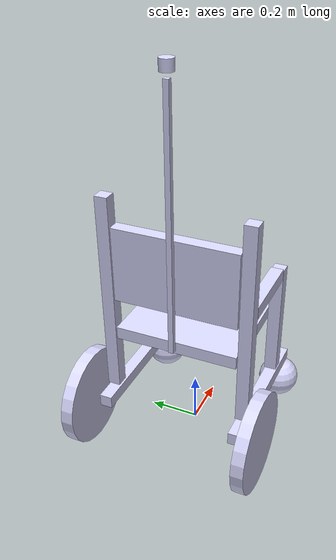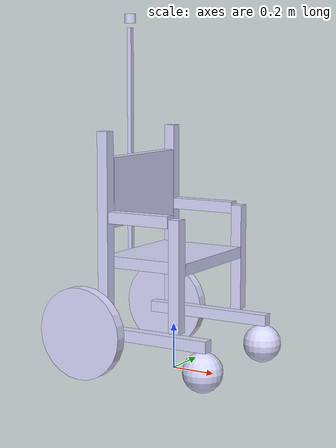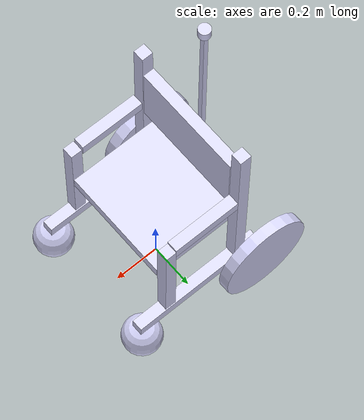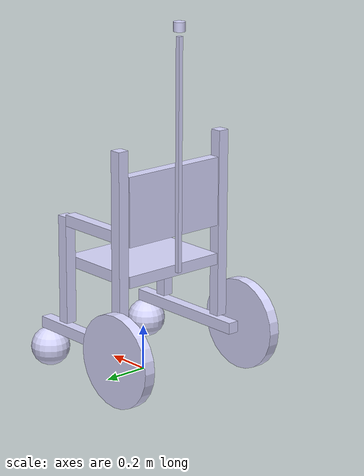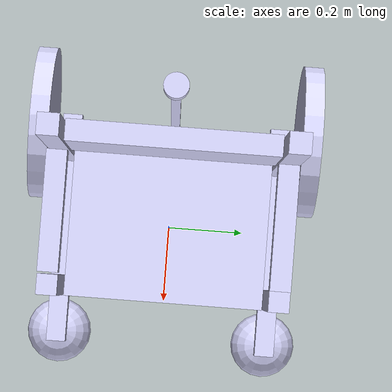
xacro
<?xml version="1.0"?>
<robot xmlns:xacro="http://www.ros.org/wiki/xacro"  name="cadeira">

    <xacro:include filename="cadeira.urdf" />

    <xacro:include filename="gazebo_control.xacro" />

    <xacro:include filename="inertial_macros.xacro" />

    <xacro:include filename="colors.xacro" />

</robot>

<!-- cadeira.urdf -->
<robot name="Assento">

    <link name="base_link" >

    </link>

    <joint name="base_footprint_joint" type="fixed">
        <parent link="base_link"/>
        <child link="base_footprint"/>
        <origin xyz="0 0 0" rpy="0 0 0"/>
    </joint>

    <link name="base_footprint">
    </link>

    <joint name="robot_base_joint" type="fixed">
        <parent link="base_link"/>
        <child link="robot_base"/>
        <origin xyz="0 0 0" rpy="0 0 0"/>
    </joint>

    <link name="robot_base">
        <inertial>
            <origin xyz="0.000000 0.000000 0.500000" rpy="-3.141593 3.141593 -3.141593" />
            <inertia ixz="0.0" ixy="0.0" ixx="0.21041666666667" iyz="0.0" izz="0.34166666666667" iyy="0.13541666666667" />
            <mass value="10.0" />
        </inertial>
        <collision name="Assento">
            <origin xyz="0.000000 0.000000 0.500000" rpy="-3.141593 3.141593 -3.141593" />
            <geometry>
                <box size="0.400000 0.490000 0.050000" />
            </geometry>
        </collision>
        <visual name="Assento">
            <origin xyz="0.000000 0.000000 0.500000" rpy="-3.141593 3.141593 -3.141593" />
            <geometry>
                <box size="0.400000 0.490000 0.050000" />
            </geometry>
            <material name="robot_base_material">
                <color rgba="0.850000 0.850000 1.000000 1.0" />
            </material>
        </visual>
    </link>
    <joint type="fixed" name="ColunaEsquerdaTraseiraLink">
        <axis xyz="0 0 1" />
        <parent link="robot_base" />
        <child link="ColunaEsquerdaTraseira" />
        <origin xyz="-0.175000 0.275000 0.500000" rpy="-1.570796 3.141593 -3.141593" />
    </joint>
    <link name="ColunaEsquerdaTraseira">
        <inertial>
            <origin xyz="0.000000 0.150000 -0.000000" rpy="1.570796 3.141593 -3.141593" />
            <inertia ixz="0.0" ixy="0.0" ixx="0.12838541666667" iyz="0.0" izz="0.00088541666666667" iyy="0.12838541666667" />
            <mass value="2.125" />
        </inertial>
        <collision name="ColunaEsquerdaTraseira">
            <origin xyz="0.000000 0.150000 -0.000000" rpy="1.570796 3.141593 -3.141593" />
            <geometry>
                <box size="0.050000 0.050000 0.825000" />
            </geometry>
        </collision>
        <visual name="ColunaEsquerdaTraseira">
            <origin xyz="0.000000 0.150000 -0.000000" rpy="1.570796 3.141593 -3.141593" />
            <geometry>
                <box size="0.050000 0.050000 0.825000" />
            </geometry>
            <material name="ColunaEsquerdaTraseira_material">
                <color rgba="0.850000 0.850000 1.000000 1.0" />
            </material>
        </visual>
    </link>
    <joint type="fixed" name="BaseEsquerdaLink">
        <axis xyz="0 0 1" />
        <parent link="ColunaEsquerdaTraseira" />
        <child link="BaseEsquerda" />
        <origin xyz="0.000000 -0.300000 0.000000" rpy="1.570796 3.141593 -3.141593" />
    </joint>
    <link name="BaseEsquerda">
        <inertial>
            <origin xyz="0.200000 0.000000 0.000000" rpy="-3.141593 3.141593 -3.141593" />
            <inertia ixz="0.0" ixy="0.0" ixx="0.00052083333333333" iyz="0.0" izz="0.026302083333333" iyy="0.026302083333333" />
            <mass value="1.25" />
        </inertial>
        <collision name="BaseEsquerda">
            <origin xyz="0.200000 0.000000 0.000000" rpy="-3.141593 3.141593 -3.141593" />
            <geometry>
                <box size="0.600000 0.050000 0.050000" />
            </geometry>
        </collision>
        <visual name="BaseEsquerda">
            <origin xyz="0.200000 0.000000 0.000000" rpy="-3.141593 3.141593 -3.141593" />
            <geometry>
                <box size="0.600000 0.050000 0.050000" />
            </geometry>
            <material name="BaseEsquerda_material">
                <color rgba="0.850000 0.850000 1.000000 1.0" />
            </material>
        </visual>
    </link>
    <joint type="continuous" name="MotorEsquerdo">
        <axis xyz="0 0 -1" />
        <parent link="BaseEsquerda" />
        <child link="RodaEsquerdaTraseira" />
        <origin xyz="-0.075000 0.075000 0.000000" rpy="-1.570796 3.141593 -3.141593" />
    </joint>
    <link name="RodaEsquerdaTraseira">
        <inertial>
            <origin xyz="0.000000 0.000000 0.000000" rpy="-3.141593 3.141593 -3.141593" />
            <inertia ixz="0.0" ixy="0.0" ixx="0.020616701789184" iyz="0.0" izz="0.039760782021998" iyy="0.020616701789184" />
            <mass value="3.5342917352887" />
        </inertial>
        <collision name="RodaEsquerdaTraseira">
            <origin xyz="0.000000 0.000000 0.000000" rpy="-3.141593 3.141593 -3.141593" />
            <geometry>
                <cylinder length="0.05" radius="0.2" />
            </geometry>
        </collision>
        <visual name="RodaEsquerdaTraseira">
            <origin xyz="0.000000 0.000000 0.000000" rpy="-3.141593 3.141593 -3.141593" />
            <geometry>
                <cylinder length="0.05" radius="0.2" />
            </geometry>
            <material name="RodaEsquerdaTraseira_material">
                <color rgba="0.850000 0.850000 1.000000 1.0" />
            </material>
        </visual>
    </link>
    <joint type="fixed" name="RodaEsquerdaDianteiraLink">
        <axis xyz="0 0 1" />
        <parent link="BaseEsquerda" />
        <child link="RodaEsquerdaDianteira" />
        <origin xyz="0.475000 0.000000 -0.110000" rpy="-3.141593 3.141593 -3.141593" />
    </joint>
    <link name="RodaEsquerdaDianteira">
        <inertial>
            <origin xyz="0.000000 0.000000 0.000000" rpy="-3.141593 3.141593 -3.141593" />
            <inertia ixz="0.0" ixy="0.0" ixx="0.016755160819147" iyz="0.0" izz="0.016755160819147" iyy="0.016755160819147" />
            <mass value="4.1887902047867" />
        </inertial>
        <collision name="RodaEsquerdaDianteira">
            <origin xyz="0.000000 0.000000 0.000000" rpy="-3.141593 3.141593 -3.141593" />
            <geometry>
                <sphere radius="0.085" />
            </geometry>
        </collision>
        <visual name="RodaEsquerdaDianteira">
            <origin xyz="0.000000 0.000000 0.000000" rpy="-3.141593 3.141593 -3.141593" />
            <geometry>
                <sphere radius="0.085" />
            </geometry>
            <material name="RodaEsquerdaDianteira_material">
                <color rgba="0.850000 0.850000 1.000000 1.0" />
            </material>
        </visual>
    </link>

    <gazebo reference="RodaEsquerdaDianteira">
        <material>Gazebo/White</material>
        <mu1 value="0.04"/>
        <mu2 value="0.04"/>
    </gazebo>

    <joint type="fixed" name="ColunaEsquerdaDianteiraLink">
        <axis xyz="0 0 1" />
        <parent link="BaseEsquerda" />
        <child link="ColunaEsquerdaDianteira" />
        <origin xyz="0.350000 0.000000 0.000000" rpy="-3.141593 3.141593 -3.141593" />
    </joint>
    <link name="ColunaEsquerdaDianteira">
        <inertial>
            <origin xyz="0.000000 0.000000 0.275000" rpy="-3.141593 3.141593 -3.141593" />
            <inertia ixz="0.0" ixy="0.0" ixx="0.00578125" iyz="0.0" izz="0.0003125" iyy="0.00578125" />
            <mass value="0.75" />
        </inertial>
        <collision name="ColunaEsquerdaDianteira">
            <origin xyz="0.000000 0.000000 0.275000" rpy="-3.141593 3.141593 -3.141593" />
            <geometry>
                <box size="0.050000 0.050000 0.475000" />
            </geometry>
        </collision>
        <visual name="ColunaEsquerdaDianteira">
            <origin xyz="0.000000 0.000000 0.275000" rpy="-3.141593 3.141593 -3.141593" />
            <geometry>
                <box size="0.050000 0.050000 0.475000" />
            </geometry>
            <material name="ColunaEsquerdaDianteira_material">
                <color rgba="0.850000 0.850000 1.000000 1.0" />
            </material>
        </visual>
    </link>
    <joint type="fixed" name="ColunaDireitaTraseiraLink">
        <axis xyz="0 0 1" />
        <parent link="robot_base" />
        <child link="ColunaDireitaTraseira" />
        <origin xyz="-0.175000 -0.275000 0.500000" rpy="-1.570796 3.141593 -3.141593" />
    </joint>
    <link name="ColunaDireitaTraseira">
        <inertial>
            <origin xyz="0.000000 0.150000 -0.000000" rpy="1.570796 3.141593 -3.141593" />
            <inertia ixz="0.0" ixy="0.0" ixx="0.12838541666667" iyz="0.0" izz="0.00088541666666667" iyy="0.12838541666667" />
            <mass value="2.125" />
        </inertial>
        <collision name="ColunaDireitaTraseira">
            <origin xyz="0.000000 0.150000 -0.000000" rpy="1.570796 3.141593 -3.141593" />
            <geometry>
                <box size="0.050000 0.050000 0.825000" />
            </geometry>
        </collision>
        <visual name="ColunaDireitaTraseira">
            <origin xyz="0.000000 0.150000 -0.000000" rpy="1.570796 3.141593 -3.141593" />
            <geometry>
                <box size="0.050000 0.050000 0.825000" />
            </geometry>
            <material name="ColunaDireitaTraseira_material">
                <color rgba="0.850000 0.850000 1.000000 1.0" />
            </material>
        </visual>
    </link>
    <joint type="fixed" name="BaseDireitaLink">
        <axis xyz="0 0 1" />
        <parent link="ColunaDireitaTraseira" />
        <child link="BaseDireita" />
        <origin xyz="0.000000 -0.300000 0.000000" rpy="1.570796 3.141593 -3.141593" />
    </joint>
    <link name="BaseDireita">
        <inertial>
            <origin xyz="0.200000 0.000000 0.000000" rpy="-3.141593 3.141593 -3.141593" />
            <inertia ixz="0.0" ixy="0.0" ixx="0.00052083333333333" iyz="0.0" izz="0.026302083333333" iyy="0.026302083333333" />
            <mass value="1.25" />
        </inertial>
        <collision name="BaseDireita">
            <origin xyz="0.200000 0.000000 0.000000" rpy="-3.141593 3.141593 -3.141593" />
            <geometry>
                <box size="0.600000 0.050000 0.050000" />
            </geometry>
        </collision>
        <visual name="BaseDireita">
            <origin xyz="0.200000 0.000000 0.000000" rpy="-3.141593 3.141593 -3.141593" />
            <geometry>
                <box size="0.600000 0.050000 0.050000" />
            </geometry>
            <material name="BaseDireita_material">
                <color rgba="0.850000 0.850000 1.000000 1.0" />
            </material>
        </visual>
    </link>
    <joint type="continuous" name="MotorDireito">
        <axis xyz="0 0 -1" />
        <parent link="BaseDireita" />
        <child link="RodaDireitaTraseira" />
        <origin xyz="-0.075000 -0.075000 0.000000" rpy="-1.570796 3.141593 -3.141593" />
    </joint>
    <link name="RodaDireitaTraseira">
        <inertial>
            <origin xyz="0.000000 0.000000 0.000000" rpy="-3.141593 3.141593 -3.141593" />
            <inertia ixz="0.0" ixy="0.0" ixx="0.020616701789184" iyz="0.0" izz="0.039760782021998" iyy="0.020616701789184" />
            <mass value="3.5342917352887" />
        </inertial>
        <collision name="RodaDireitaTraseira">
            <origin xyz="0.000000 0.000000 0.000000" rpy="-3.141593 3.141593 -3.141593" />
            <geometry>
                <cylinder length="0.05" radius="0.2" />
            </geometry>
        </collision>
        <visual name="RodaDireitaTraseira">
            <origin xyz="0.000000 0.000000 0.000000" rpy="-3.141593 3.141593 -3.141593" />
            <geometry>
                <cylinder length="0.05" radius="0.2" />
            </geometry>
            <material name="RodaDireitaTraseira_material">
                <color rgba="0.850000 0.850000 1.000000 1.0" />
            </material>
        </visual>
    </link>
    <joint type="fixed" name="ColunaDireitaDianteira">
        <axis xyz="0 0 1" />
        <parent link="BaseDireita" />
        <child link="ColunaDireitaDianteira_2" />
        <origin xyz="0.350000 0.000000 0.000000" rpy="-3.141593 3.141593 -3.141593" />
    </joint>
    <link name="ColunaDireitaDianteira_2">
        <inertial>
            <origin xyz="0.000000 0.000000 0.275000" rpy="-3.141593 3.141593 -3.141593" />
            <inertia ixz="0.0" ixy="0.0" ixx="0.00578125" iyz="0.0" izz="0.0003125" iyy="0.00578125" />
            <mass value="0.75" />
        </inertial>
        <collision name="ColunaDireitaDianteira">
            <origin xyz="0.000000 0.000000 0.275000" rpy="-3.141593 3.141593 -3.141593" />
            <geometry>
                <box size="0.050000 0.050000 0.475000" />
            </geometry>
        </collision>
        <visual name="ColunaDireitaDianteira">
            <origin xyz="0.000000 0.000000 0.275000" rpy="-3.141593 3.141593 -3.141593" />
            <geometry>
                <box size="0.050000 0.050000 0.475000" />
            </geometry>
            <material name="ColunaDireitaDianteira_2_material">
                <color rgba="0.850000 0.850000 1.000000 1.0" />
            </material>
        </visual>
    </link>
    <joint type="fixed" name="RodaDireitaDianteiraLink">
        <axis xyz="0 0 1" />
        <parent link="BaseDireita" />
        <child link="RodaDireitaDianteira" />
        <origin xyz="0.475000 0.000000 -0.110000" rpy="-3.141593 3.141593 -3.141593" />
    </joint>
    <link name="RodaDireitaDianteira">
        <inertial>
            <origin xyz="0.000000 0.000000 0.000000" rpy="-3.141593 3.141593 -3.141593" />
            <inertia ixz="0.0" ixy="0.0" ixx="0.016755160819147" iyz="0.0" izz="0.016755160819147" iyy="0.016755160819147" />
            <mass value="4.1887902047867" />
        </inertial>
        <collision name="RodaDireitaDianteira">
            <origin xyz="0.000000 0.000000 0.000000" rpy="-3.141593 3.141593 -3.141593" />
            <geometry>
                <sphere radius="0.085" />
            </geometry>
        </collision>
        <visual name="RodaDireitaDianteira">
            <origin xyz="0.000000 0.000000 0.000000" rpy="-3.141593 3.141593 -3.141593" />
            <geometry>
                <sphere radius="0.085" />
            </geometry>
            <material name="RodaDireitaDianteira_material">
                <color rgba="0.850000 0.850000 1.000000 1.0" />
            </material>
        </visual>
    </link>

    <gazebo reference="RodaDireitaDianteira">
        <material>Gazebo/White</material>
        <mu1 value="0.04"/>
        <mu2 value="0.04"/>
    </gazebo>

    <joint type="fixed" name="ApoioCostasLink">
        <axis xyz="0 0 1" />
        <parent link="robot_base" />
        <child link="ApoioCostas" />
        <origin xyz="-0.175000 0.000000 0.800000" rpy="-3.141593 3.141593 -3.141593" />
    </joint>
    <link name="ApoioCostas">
        <inertial>
            <origin xyz="0.000000 0.000000 0.000000" rpy="-3.141593 3.141593 -3.141593" />
            <inertia ixz="0.0" ixy="0.0" ixx="0.2125" iyz="0.0" izz="0.1578125" iyy="0.0578125" />
            <mass value="7.5" />
        </inertial>
        <collision name="ApoioCostas">
            <origin xyz="0.000000 0.000000 0.000000" rpy="-3.141593 3.141593 -3.141593" />
            <geometry>
                <box size="0.050000 0.490000 0.300000" />
            </geometry>
        </collision>
        <visual name="ApoioCostas">
            <origin xyz="0.000000 0.000000 0.000000" rpy="-3.141593 3.141593 -3.141593" />
            <geometry>
                <box size="0.050000 0.490000 0.300000" />
            </geometry>
            <material name="ApoioCostas_material">
                <color rgba="0.850000 0.850000 1.000000 1.0" />
            </material>
        </visual>
    </link>
    <joint type="fixed" name="ApoioBracoEsquerdoLink">
        <axis xyz="0 0 1" />
        <parent link="robot_base" />
        <child link="ApoioBracoEsquerdo" />
        <origin xyz="0.000000 0.275000 0.700000" rpy="-3.141593 3.141593 -3.141593" />
    </joint>
    <link name="ApoioBracoEsquerdo">
        <inertial>
            <origin xyz="0.000000 0.000000 0.000000" rpy="-3.141593 3.141593 -3.141593" />
            <inertia ixz="0.0" ixy="0.0" ixx="0.00036458333333333" iyz="0.0" izz="0.0091145833333333" iyy="0.0091145833333333" />
            <mass value="0.875" />
        </inertial>
        <collision name="ApoioBracoEsquerdo">
            <origin xyz="0.000000 0.000000 0.000000" rpy="-3.141593 3.141593 -3.141593" />
            <geometry>
                <box size="0.300000 0.050000 0.050000" />
            </geometry>
        </collision>
        <visual name="ApoioBracoEsquerdo">
            <origin xyz="0.000000 0.000000 0.000000" rpy="-3.141593 3.141593 -3.141593" />
            <geometry>
                <box size="0.300000 0.050000 0.050000" />
            </geometry>
            <material name="ApoioBracoEsquerdo_material">
                <color rgba="0.850000 0.850000 1.000000 1.0" />
            </material>
        </visual>
    </link>
    <joint type="fixed" name="ApoioBracoDireitoLink">
        <axis xyz="0 0 1" />
        <parent link="robot_base" />
        <child link="ApoioBracoDireito" />
        <origin xyz="0.000000 -0.275000 0.700000" rpy="-3.141593 3.141593 -3.141593" />
    </joint>
    <link name="ApoioBracoDireito">
        <inertial>
            <origin xyz="0.000000 0.000000 0.000000" rpy="-3.141593 3.141593 -3.141593" />
            <inertia ixz="0.0" ixy="0.0" ixx="0.00036458333333333" iyz="0.0" izz="0.0091145833333333" iyy="0.0091145833333333" />
            <mass value="0.875" />
        </inertial>
        <collision name="ApoioBracoDireito">
            <origin xyz="0.000000 0.000000 0.000000" rpy="-3.141593 3.141593 -3.141593" />
            <geometry>
                <box size="0.290000 0.050000 0.050000" />
            </geometry>
        </collision>
        <visual name="ApoioBracoDireito">
            <origin xyz="0.000000 0.000000 0.000000" rpy="-3.141593 3.141593 -3.141593" />
            <geometry>
                <box size="0.290000 0.050000 0.050000" />
            </geometry>
            <material name="ApoioBracoDireito_material">
                <color rgba="0.850000 0.850000 1.000000 1.0" />
            </material>
        </visual>
    </link>
    <joint type="fixed" name="ApoioLidarLink">
        <axis xyz="0 0 1" />
        <parent link="robot_base" />
        <child link="ApoioLidar" />
        <origin xyz="-0.225000 0.000000 0.500000" rpy="-3.141593 3.141593 -3.141593" />
    </joint>
    <link name="ApoioLidar">
        <inertial>
            <origin xyz="0.000000 0.000000 0.500000" rpy="-3.141593 3.141593 -3.141593" />
            <inertia ixz="0.0" ixy="0.0" ixx="0.20885416666667" iyz="0.0" izz="0.0010416666666667" iyy="0.20885416666667" />
            <mass value="2.5" />
        </inertial>
        <collision name="ApoioLidar">
            <origin xyz="0.000000 0.000000 0.500000" rpy="-3.141593 3.141593 -3.141593" />
            <geometry>
                <box size="0.020000 0.020000 1.000000" />
            </geometry>
        </collision>
        <visual name="ApoioLidar">
            <origin xyz="0.000000 0.000000 0.500000" rpy="0 0 0" />
            <geometry>
                <box size="0.020000 0.020000 1.000000" />
            </geometry>
            <material name="ApoioLidar_material">
                <color rgba="0.850000 0.850000 1.000000 1.0" />
            </material>
        </visual>
    </link>
    <joint type="revolute" name="MotorLidar">
        <axis xyz="0 1 0" />
        <parent link="ApoioLidar" />
        <child link="laser_frame" />
        <origin xyz="0.000000 -0.0000 1.040000" rpy="0 0 0" />
        <limit lower="-2" upper="1.2" effort="1000" velocity="1000" />
    </joint>
    <link name="laser_frame">
        <inertial>
            <origin xyz="0.000000 0.0000 -0.000000" rpy="0 0 0" />
            <inertia ixz="0.0" ixy="0.0" ixx="2.2743821815053e-05" iyz="0.0" izz="2.4543692606172e-05" iyy="2.2743821815053e-05" />
            <mass value="0.07853981633975" />
        </inertial>
        <collision>
            <origin xyz="0.000000 0.0000 -0.000000" rpy="0 0 0" />
            <geometry>
                <cylinder length="0.04" radius="0.025" />
            </geometry>
        </collision>
        <visual>
            <origin xyz="0.000000 0.0000 -0.000000" rpy="0 0 0" />
            <geometry>
                <cylinder length="0.04" radius="0.025" />
            </geometry>
            <material name="Lidar_material">
                <color rgba="0.850000 0.850000 1.000000 1.0" />
            </material>
        </visual>
    </link>

</robot>

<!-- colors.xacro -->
<robot xmlns:xacro="http://www.ros.org/wiki/xacro">

    <material name="white">
        <color rgba="1 1 1 1"/>
    </material>

    <material name="orange">
        <color rgba="1 0.3 0.1 1"/>
    </material>

    <material name="blue">
        <color rgba="0.2 0.2 1 1"/>
    </material>

    <material name="black">
        <color rgba="0 0 0 1"/>
    </material>

    <material name="red">
        <color rgba="1 0.1 0.1 1"/>
    </material>

</robot>
